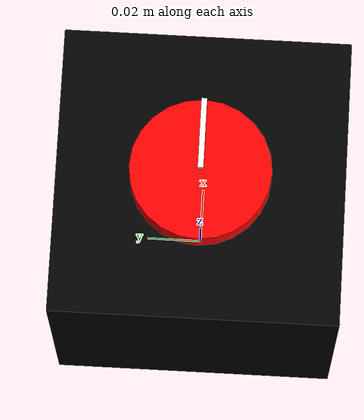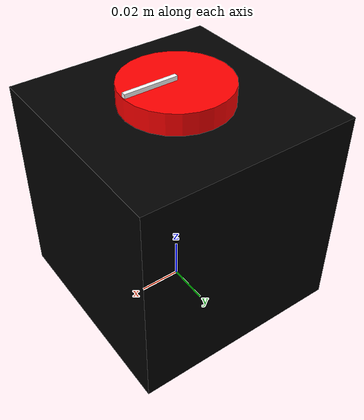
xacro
<?xml version="1.0"?>
<robot name="qube" xmlns:xacro="http://www.ros.org/wiki/xacro">

  <!-- ===== Arguments ===== -->
  <xacro:arg name="baud_rate"   default="115200"/>
  <xacro:arg name="device"      default="/dev/ttyACM0"/>
  <xacro:arg name="simulation"  default="false"/>

  <!-- ===== Includes ===== -->
  <xacro:include filename="$(find qube_description)/urdf/joint_model.macro.urdf.xacro"/>
  <xacro:include filename="$(find qube_driver)/ros2_control/qube_driver.ros2_control.xacro"/>

  <!-- ===== Materials ===== -->
  <material name="black"> <color rgba="0 0 0 1"/> </material>
  <material name="red">   <color rgba="1 0 0 1"/> </material>
  <material name="white"> <color rgba="1 1 1 1"/> </material>

  <!-- ===== World ===== -->
  <link name="world"/>

  <!-- ===== Robot ===== -->
  <xacro:joint_model prefix=""/>

  <joint name="base_joint" type="fixed">
    <parent link="world"/>
    <child  link="base_link"/>
    <origin xyz="0 0 0" rpy="0 0 0"/>
  </joint>

  <xacro:qube_driver_ros2_control
    name="qube_driver"
    prefix=""
    baud_rate="$(arg baud_rate)"
    device="$(arg device)"
    simulation="$(arg simulation)"
  />

</robot>

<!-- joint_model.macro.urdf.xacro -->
<robot xmlns:xacro="http://www.ros.org/wiki/xacro">

  <!-- ================= PROPERTIES ================= -->
  <xacro:property name="box_size" value="0.102"/>
  <xacro:property name="rotor_length" value="0.01"/>
  <xacro:property name="rotor_radius" value="0.025"/>
  <xacro:property name="indicator_length" value="0.025"/>

  <!-- ================= MACRO ================= -->
  <xacro:macro name="joint_model" params="prefix">

    <!-- Base -->
    <link name="${prefix}base_link"/>

    <!-- Stator -->
    <link name="${prefix}stator_link">
      <visual>
        <geometry>
          <box size="${box_size} ${box_size} ${box_size}"/>
        </geometry>
        <material name="black"/>
      </visual>
    </link>

    <!-- Rotor -->
    <link name="${prefix}rotor_link">
      <visual>
        <geometry>
          <cylinder length="${rotor_length}" radius="${rotor_radius}"/>
        </geometry>
        <material name="red"/>
      </visual>
    </link>

    <!-- Angle Indicator -->
    <link name="${prefix}angle_link">
      <visual>
        <geometry>
          <box size="${indicator_length} 0.002 0.002"/>
        </geometry>
        <material name="white"/>
      </visual>
    </link>

    <!-- ================= JOINTS ================= -->

    <!-- base -> stator -->
    <joint name="${prefix}stator_joint" type="fixed">
      <parent link="${prefix}base_link"/>
      <child link="${prefix}stator_link"/>
      <origin xyz="0 0 ${box_size/2}" rpy="0 0 0"/>
    </joint>

    <!-- stator -> rotor -->
    <joint name="motor_joint" type="revolute">
      <parent link="${prefix}stator_link"/>
      <child link="${prefix}rotor_link"/>
      <origin xyz="0 0 ${box_size/2 + rotor_length/2}" rpy="0 0 0"/>
      <axis xyz="0 0 1"/>
      <limit lower="-3.1416" upper="3.1416" effort="1" velocity="1"/>
    </joint>

    <!-- rotor -> indicator -->
    <joint name="${prefix}indicator" type="fixed">
      <parent link="${prefix}rotor_link"/>
      <child link="${prefix}angle_link"/>
      <origin xyz="0.0125 0 ${rotor_length/2 + 0.0015}" rpy="0 0 0"/>
    </joint>

  </xacro:macro>

</robot>
